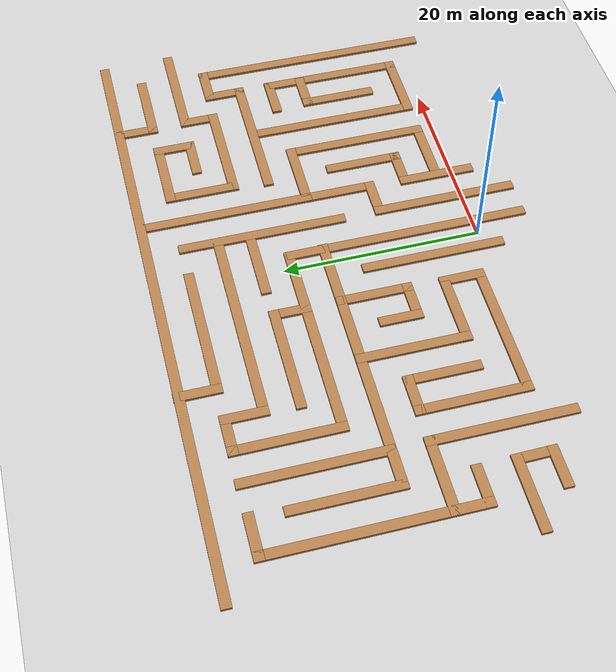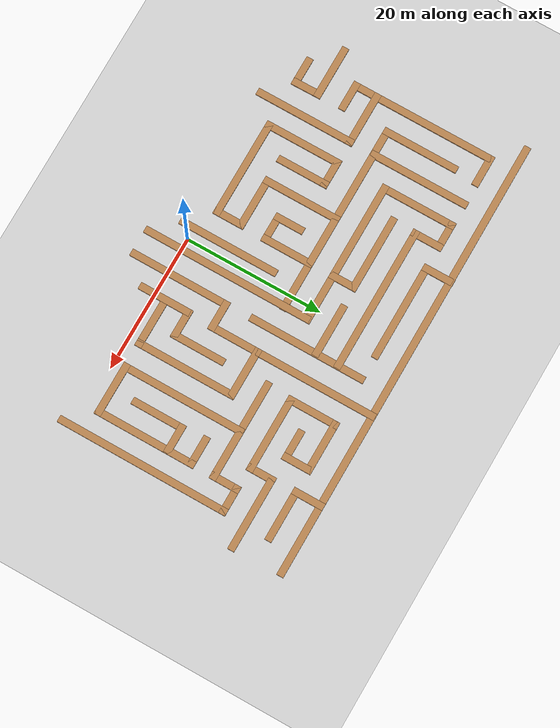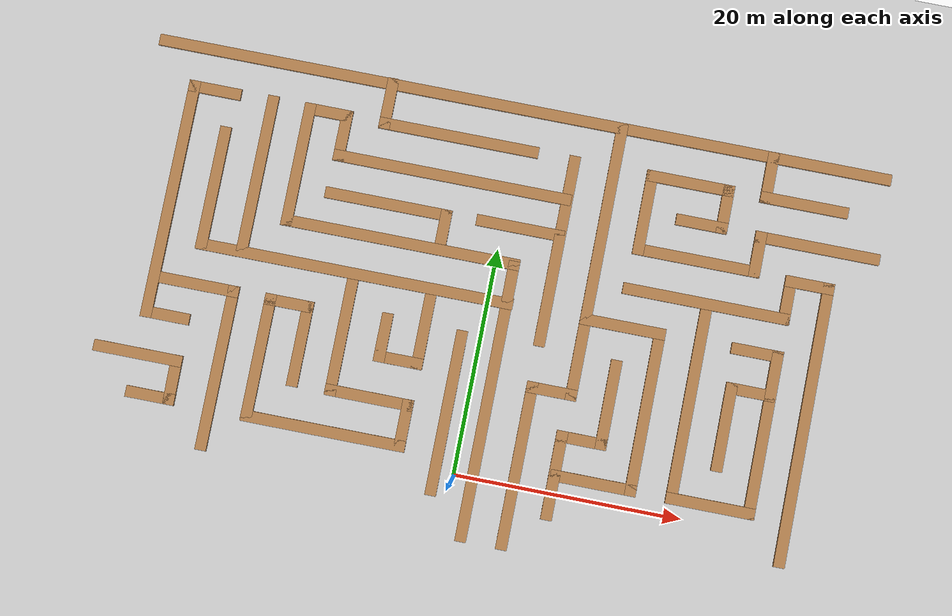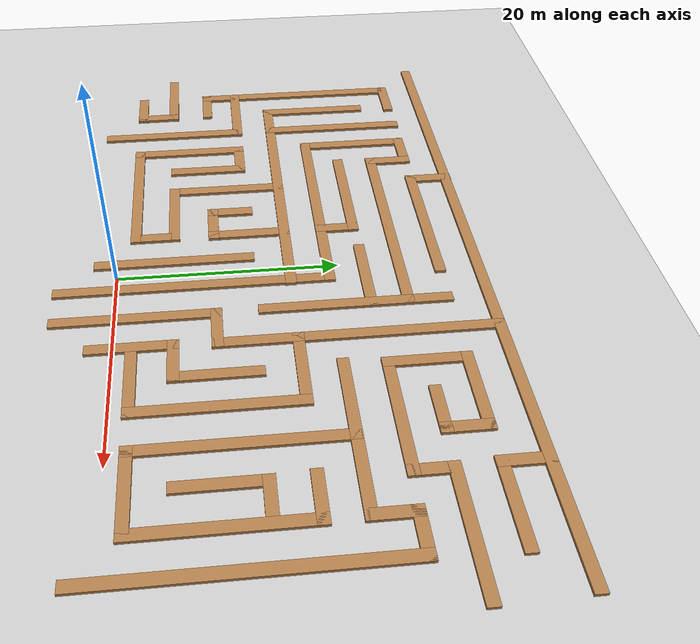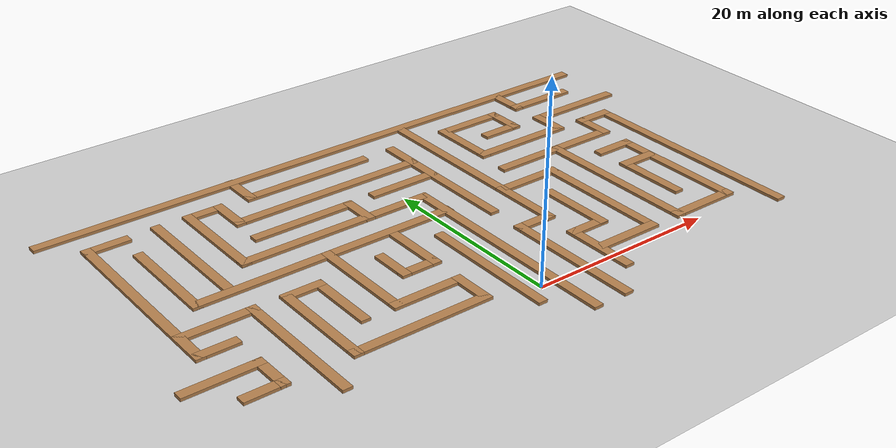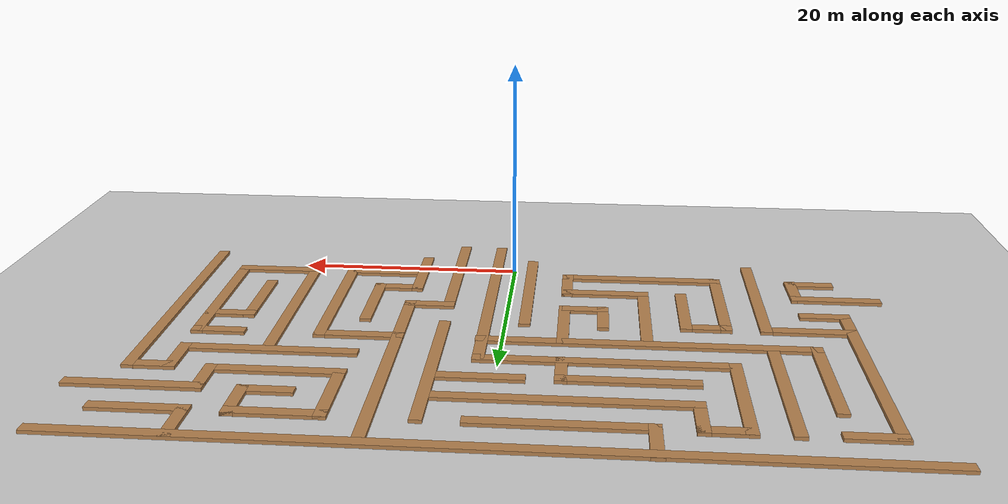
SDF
<sdf version="1.7">
 <world name="default">
  <model name="ground_plane">
   <static>1</static>
   <link name="link">
    <collision name="collision">
     <geometry><plane><normal>0 0 1</normal><size>100 100</size></plane></geometry>
     <surface><friction><ode><mu>100</mu><mu2>50</mu2></ode></friction></surface>
    </collision>
    <visual name="visual">
     <cast_shadows>0</cast_shadows>
     <geometry><plane><normal>0 0 1</normal><size>100 100</size></plane></geometry>
     <material>
      <script><uri>file://media/materials/scripts/gazebo.material</uri><name>Gazebo/Grey</name></script>
     </material>
    </visual>
   </link>
  </model>
  <model name="Maze_thick_walls">
   <pose>0.046124 0.012169 0 0 -0 0</pose>
   <link name="Wall_0">
    <collision name="Wall_0_Collision">
     <geometry><box><size>65.8498 1 0.3</size></box></geometry>
     <pose>0 0 0.15 0 -0 0</pose>
    </collision>
    <visual name="Wall_0_Visual">
     <pose>0 0 0.15 0 -0 0</pose>
     <geometry><box><size>65.8498 1 0.3</size></box></geometry>
     <material>
      <script><uri>file://media/materials/scripts/gazebo.material</uri><name>Gazebo/Wood</name></script>
      <ambient>1 1 1 1</ambient>
     </material>
     <meta><layer>0</layer></meta>
    </visual>
    <pose>-0.164124 32.6558 0 0 -0 0</pose>
   </link>
   <link name="Wall_13">
    <collision name="Wall_13_Collision">
     <geometry><box><size>4.714 1 0.3</size></box></geometry>
     <pose>0 0 0.15 0 -0 0</pose>
    </collision>
    <visual name="Wall_13_Visual">
     <pose>0 0 0.15 0 -0 0</pose>
     <geometry><box><size>4.714 1 0.3</size></box></geometry>
     <material>
      <script><uri>file://media/materials/scripts/gazebo.material</uri><name>Gazebo/Wood</name></script>
      <ambient>1 1 1 1</ambient>
     </material>
     <meta><layer>0</layer></meta>
    </visual>
    <pose>-27.3391 29.1298 0 0 -0 3.14159</pose>
   </link>
   <link name="Wall_15">
    <collision name="Wall_15_Collision">
     <geometry><box><size>21.35 1 0.3</size></box></geometry>
     <pose>0 0 0.15 0 -0 0</pose>
    </collision>
    <visual name="Wall_15_Visual">
     <pose>0 0 0.15 0 -0 0</pose>
     <geometry><box><size>21.35 1 0.3</size></box></geometry>
     <material>
      <script><uri>file://media/materials/scripts/gazebo.material</uri><name>Gazebo/Wood</name></script>
      <ambient>1 1 1 1</ambient>
     </material>
     <meta><layer>0</layer></meta>
    </visual>
    <pose>-29.1961 18.9548 0 0 -0 -1.5708</pose>
   </link>
   <link name="Wall_151">
    <collision name="Wall_151_Collision">
     <geometry><box><size>14.6 1 0.3</size></box></geometry>
     <pose>0 0 0.15 0 -0 0</pose>
    </collision>
    <visual name="Wall_151_Visual">
     <pose>0 0 0.15 0 -0 0</pose>
     <geometry><box><size>14.6 1 0.3</size></box></geometry>
     <material>
      <script><uri>file://media/materials/scripts/gazebo.material</uri><name>Gazebo/Wood</name></script>
      <ambient>1 1 1 1</ambient>
     </material>
     <meta><layer>0</layer></meta>
    </visual>
    <pose>-1.73612 5.15183 0 0 -0 1.5708</pose>
   </link>
   <link name="Wall_159">
    <collision name="Wall_159_Collision">
     <geometry><box><size>25.1 1 0.3</size></box></geometry>
     <pose>0 0 0.15 0 -0 0</pose>
    </collision>
    <visual name="Wall_159_Visual">
     <pose>0 0 0.15 0 -0 0</pose>
     <geometry><box><size>25.1 1 0.3</size></box></geometry>
     <material>
      <script><uri>file://media/materials/scripts/gazebo.material</uri><name>Gazebo/Wood</name></script>
      <ambient>1 1 1 1</ambient>
     </material>
     <meta><layer>0</layer></meta>
    </visual>
    <pose>29.0099 10.1139 0 0 -0 1.5708</pose>
   </link>
   <link name="Wall_161">
    <collision name="Wall_161_Collision">
     <geometry><box><size>4.35 1 0.3</size></box></geometry>
     <pose>0 0 0.15 0 -0 0</pose>
    </collision>
    <visual name="Wall_161_Visual">
     <pose>0 0 0.15 0 -0 0</pose>
     <geometry><box><size>4.35 1 0.3</size></box></geometry>
     <material>
      <script><uri>file://media/materials/scripts/gazebo.material</uri><name>Gazebo/Wood</name></script>
      <ambient>1 1 1 1</ambient>
     </material>
     <meta><layer>0</layer></meta>
    </visual>
    <pose>27.3349 22.1638 0 0 -0 3.14159</pose>
   </link>
   <link name="Wall_163">
    <collision name="Wall_163_Collision">
     <geometry><box><size>4.35 1 0.3</size></box></geometry>
     <pose>0 0 0.15 0 -0 0</pose>
    </collision>
    <visual name="Wall_163_Visual">
     <pose>0 0 0.15 0 -0 0</pose>
     <geometry><box><size>4.35 1 0.3</size></box></geometry>
     <material>
      <script><uri>file://media/materials/scripts/gazebo.material</uri><name>Gazebo/Wood</name></script>
      <ambient>1 1 1 1</ambient>
     </material>
     <meta><layer>0</layer></meta>
    </visual>
    <pose>25.6599 20.4888 0 0 -0 -1.5708</pose>
   </link>
   <link name="Wall_165">
    <collision name="Wall_165_Collision">
     <geometry><box><size>14.85 1 0.3</size></box></geometry>
     <pose>0 0 0.15 0 -0 0</pose>
    </collision>
    <visual name="Wall_165_Visual">
     <pose>0 0 0.15 0 -0 0</pose>
     <geometry><box><size>14.85 1 0.3</size></box></geometry>
     <material>
      <script><uri>file://media/materials/scripts/gazebo.material</uri><name>Gazebo/Wood</name></script>
      <ambient>1 1 1 1</ambient>
     </material>
     <meta><layer>0</layer></meta>
    </visual>
    <pose>18.7349 18.8138 0 0 -0 3.14159</pose>
   </link>
   <link name="Wall_167">
    <collision name="Wall_167_Collision">
     <geometry><box><size>4.59954 1 0.3</size></box></geometry>
     <pose>0 0 0.15 0 -0 0</pose>
    </collision>
    <visual name="Wall_167_Visual">
     <pose>0 0 0.15 0 -0 0</pose>
     <geometry><box><size>4.59954 1 0.3</size></box></geometry>
     <material>
      <script><uri>file://media/materials/scripts/gazebo.material</uri><name>Gazebo/Wood</name></script>
      <ambient>1 1 1 1</ambient>
     </material>
     <meta><layer>0</layer></meta>
    </visual>
    <pose>23.8789 15.4688 0 0 -0 0</pose>
   </link>
   <link name="Wall_169">
    <collision name="Wall_169_Collision">
     <geometry><box><size>14.85 1 0.3</size></box></geometry>
     <pose>0 0 0.15 0 -0 0</pose>
    </collision>
    <visual name="Wall_169_Visual">
     <pose>0 0 0.15 0 -0 0</pose>
     <geometry><box><size>14.85 1 0.3</size></box></geometry>
     <material>
      <script><uri>file://media/materials/scripts/gazebo.material</uri><name>Gazebo/Wood</name></script>
      <ambient>1 1 1 1</ambient>
     </material>
     <meta><layer>0</layer></meta>
    </visual>
    <pose>25.6789 8.54383 0 0 -0 -1.5708</pose>
   </link>
   <link name="Wall_17">
    <collision name="Wall_17_Collision">
     <geometry><box><size>4.35 1 0.3</size></box></geometry>
     <pose>0 0 0.15 0 -0 0</pose>
    </collision>
    <visual name="Wall_17_Visual">
     <pose>0 0 0.15 0 -0 0</pose>
     <geometry><box><size>4.35 1 0.3</size></box></geometry>
     <material>
      <script><uri>file://media/materials/scripts/gazebo.material</uri><name>Gazebo/Wood</name></script>
      <ambient>1 1 1 1</ambient>
     </material>
     <meta><layer>0</layer></meta>
    </visual>
    <pose>-27.5211 8.77983 0 0 -0 0</pose>
   </link>
   <link name="Wall_171">
    <collision name="Wall_171_Collision">
     <geometry><box><size>4.35026 1 0.3</size></box></geometry>
     <pose>0 0 0.15 0 -0 0</pose>
    </collision>
    <visual name="Wall_171_Visual">
     <pose>0 0 0.15 0 -0 0</pose>
     <geometry><box><size>4.35026 1 0.3</size></box></geometry>
     <material>
      <script><uri>file://media/materials/scripts/gazebo.material</uri><name>Gazebo/Wood</name></script>
      <ambient>1 1 1 1</ambient>
     </material>
     <meta><layer>0</layer></meta>
    </visual>
    <pose>23.8999 11.9818 0 0 -0 3.14159</pose>
   </link>
   <link name="Wall_173">
    <collision name="Wall_173_Collision">
     <geometry><box><size>7.85 1 0.3</size></box></geometry>
     <pose>0 0 0.15 0 -0 0</pose>
    </collision>
    <visual name="Wall_173_Visual">
     <pose>0 0 0.15 0 -0 0</pose>
     <geometry><box><size>7.85 1 0.3</size></box></geometry>
     <material>
      <script><uri>file://media/materials/scripts/gazebo.material</uri><name>Gazebo/Wood</name></script>
      <ambient>1 1 1 1</ambient>
     </material>
     <meta><layer>0</layer></meta>
    </visual>
    <pose>22.2249 8.55683 0 0 -0 -1.5708</pose>
   </link>
   <link name="Wall_175">
    <collision name="Wall_175_Collision">
     <geometry><box><size>7.85 1 0.3</size></box></geometry>
     <pose>0 0 0.15 0 -0 0</pose>
    </collision>
    <visual name="Wall_175_Visual">
     <pose>0 0 0.15 0 -0 0</pose>
     <geometry><box><size>7.85 1 0.3</size></box></geometry>
     <material>
      <script><uri>file://media/materials/scripts/gazebo.material</uri><name>Gazebo/Wood</name></script>
      <ambient>1 1 1 1</ambient>
     </material>
     <meta><layer>0</layer></meta>
    </visual>
    <pose>22.2539 1.61883 0 0 -0 3.14159</pose>
   </link>
   <link name="Wall_177">
    <collision name="Wall_177_Collision">
     <geometry><box><size>18.1 1 0.3</size></box></geometry>
     <pose>0 0 0.15 0 -0 0</pose>
    </collision>
    <visual name="Wall_177_Visual">
     <pose>0 0 0.15 0 -0 0</pose>
     <geometry><box><size>18.1 1 0.3</size></box></geometry>
     <material>
      <script><uri>file://media/materials/scripts/gazebo.material</uri><name>Gazebo/Wood</name></script>
      <ambient>1 1 1 1</ambient>
     </material>
     <meta><layer>0</layer></meta>
    </visual>
    <pose>18.8289 10.1688 0 0 -0 1.5708</pose>
   </link>
   <link name="Wall_179">
    <collision name="Wall_179_Collision">
     <geometry><box><size>7.85039 1 0.3</size></box></geometry>
     <pose>0 0 0.15 0 -0 0</pose>
    </collision>
    <visual name="Wall_179_Visual">
     <pose>0 0 0.15 0 -0 0</pose>
     <geometry><box><size>7.85039 1 0.3</size></box></geometry>
     <material>
      <script><uri>file://media/materials/scripts/gazebo.material</uri><name>Gazebo/Wood</name></script>
      <ambient>1 1 1 1</ambient>
     </material>
     <meta><layer>0</layer></meta>
    </visual>
    <pose>8.50888 1.61983 0 0 -0 1.5708</pose>
   </link>
   <link name="Wall_181">
    <collision name="Wall_181_Collision">
     <geometry><box><size>7.59964 1 0.3</size></box></geometry>
     <pose>0 0 0.15 0 -0 0</pose>
    </collision>
    <visual name="Wall_181_Visual">
     <pose>0 0 0.15 0 -0 0</pose>
     <geometry><box><size>7.59964 1 0.3</size></box></geometry>
     <material>
      <script><uri>file://media/materials/scripts/gazebo.material</uri><name>Gazebo/Wood</name></script>
      <ambient>1 1 1 1</ambient>
     </material>
     <meta><layer>0</layer></meta>
    </visual>
    <pose>11.9409 1.61383 0 0 -0 0</pose>
   </link>
   <link name="Wall_183">
    <collision name="Wall_183_Collision">
     <geometry><box><size>14.85 1 0.3</size></box></geometry>
     <pose>0 0 0.15 0 -0 0</pose>
    </collision>
    <visual name="Wall_183_Visual">
     <pose>0 0 0.15 0 -0 0</pose>
     <geometry><box><size>14.85 1 0.3</size></box></geometry>
     <material>
      <script><uri>file://media/materials/scripts/gazebo.material</uri><name>Gazebo/Wood</name></script>
      <ambient>1 1 1 1</ambient>
     </material>
     <meta><layer>0</layer></meta>
    </visual>
    <pose>15.2409 8.53883 0 0 -0 1.5708</pose>
   </link>
   <link name="Wall_185">
    <collision name="Wall_185_Collision">
     <geometry><box><size>7.6 1 0.3</size></box></geometry>
     <pose>0 0 0.15 0 -0 0</pose>
    </collision>
    <visual name="Wall_185_Visual">
     <pose>0 0 0.15 0 -0 0</pose>
     <geometry><box><size>7.6 1 0.3</size></box></geometry>
     <material>
      <script><uri>file://media/materials/scripts/gazebo.material</uri><name>Gazebo/Wood</name></script>
      <ambient>1 1 1 1</ambient>
     </material>
     <meta><layer>0</layer></meta>
    </visual>
    <pose>11.9409 15.4638 0 0 -0 3.14159</pose>
   </link>
   <link name="Wall_187">
    <collision name="Wall_187_Collision">
     <geometry><box><size>7.724 1 0.3</size></box></geometry>
     <pose>0 0 0.15 0 -0 0</pose>
    </collision>
    <visual name="Wall_187_Visual">
     <pose>0 0 0.15 0 -0 0</pose>
     <geometry><box><size>7.724 1 0.3</size></box></geometry>
     <material>
      <script><uri>file://media/materials/scripts/gazebo.material</uri><name>Gazebo/Wood</name></script>
      <ambient>1 1 1 1</ambient>
     </material>
     <meta><layer>0</layer></meta>
    </visual>
    <pose>8.64088 12.1018 0 0 -0 -1.5708</pose>
   </link>
   <link name="Wall_189">
    <collision name="Wall_189_Collision">
     <geometry><box><size>7.944 1 0.3</size></box></geometry>
     <pose>0 0 0.15 0 -0 0</pose>
    </collision>
    <visual name="Wall_189_Visual">
     <pose>0 0 0.15 0 -0 0</pose>
     <geometry><box><size>7.944 1 0.3</size></box></geometry>
     <material>
      <script><uri>file://media/materials/scripts/gazebo.material</uri><name>Gazebo/Wood</name></script>
      <ambient>1 1 1 1</ambient>
     </material>
     <meta><layer>0</layer></meta>
    </visual>
    <pose>11.9899 8.51683 0 0 -0 -1.5708</pose>
   </link>
   <link name="Wall_19">
    <collision name="Wall_19_Collision">
     <geometry><box><size>7.89642 1 0.3</size></box></geometry>
     <pose>0 0 0.15 0 -0 0</pose>
    </collision>
    <visual name="Wall_19_Visual">
     <pose>0 0 0.15 0 -0 0</pose>
     <geometry><box><size>7.89642 1 0.3</size></box></geometry>
     <material>
      <script><uri>file://media/materials/scripts/gazebo.material</uri><name>Gazebo/Wood</name></script>
      <ambient>1 1 1 1</ambient>
     </material>
     <meta><layer>0</layer></meta>
    </visual>
    <pose>-29.1691 5.05883 0 0 -0 0</pose>
   </link>
   <link name="Wall_191">
    <collision name="Wall_191_Collision">
     <geometry><box><size>4.481 1 0.3</size></box></geometry>
     <pose>0 0 0.15 0 -0 0</pose>
    </collision>
    <visual name="Wall_191_Visual">
     <pose>0 0 0.15 0 -0 0</pose>
     <geometry><box><size>4.481 1 0.3</size></box></geometry>
     <material>
      <script><uri>file://media/materials/scripts/gazebo.material</uri><name>Gazebo/Wood</name></script>
      <ambient>1 1 1 1</ambient>
     </material>
     <meta><layer>0</layer></meta>
    </visual>
    <pose>10.2494 5.04483 0 0 -0 3.14159</pose>
   </link>
   <link name="Wall_193">
    <collision name="Wall_193_Collision">
     <geometry><box><size>24.85 1 0.3</size></box></geometry>
     <pose>0 0 0.15 0 -0 0</pose>
    </collision>
    <visual name="Wall_193_Visual">
     <pose>0 0 0.15 0 -0 0</pose>
     <geometry><box><size>24.85 1 0.3</size></box></geometry>
     <material>
      <script><uri>file://media/materials/scripts/gazebo.material</uri><name>Gazebo/Wood</name></script>
      <ambient>1 1 1 1</ambient>
     </material>
     <meta><layer>0</layer></meta>
    </visual>
    <pose>1.57988 6.87483 0 0 -0 1.5708</pose>
   </link>
   <link name="Wall_195">
    <collision name="Wall_195_Collision">
     <geometry><box><size>14.79 1 0.3</size></box></geometry>
     <pose>0 0 0.15 0 -0 0</pose>
    </collision>
    <visual name="Wall_195_Visual">
     <pose>0 0 0.15 0 -0 0</pose>
     <geometry><box><size>14.79 1 0.3</size></box></geometry>
     <material>
      <script><uri>file://media/materials/scripts/gazebo.material</uri><name>Gazebo/Wood</name></script>
      <ambient>1 1 1 1</ambient>
     </material>
     <meta><layer>0</layer></meta>
    </visual>
    <pose>5.16588 1.84483 0 0 -0 1.5708</pose>
   </link>
   <link name="Wall_197">
    <collision name="Wall_197_Collision">
     <geometry><box><size>4.47552 1 0.3</size></box></geometry>
     <pose>0 0 0.15 0 -0 0</pose>
    </collision>
    <visual name="Wall_197_Visual">
     <pose>0 0 0.15 0 -0 0</pose>
     <geometry><box><size>4.47552 1 0.3</size></box></geometry>
     <material>
      <script><uri>file://media/materials/scripts/gazebo.material</uri><name>Gazebo/Wood</name></script>
      <ambient>1 1 1 1</ambient>
     </material>
     <meta><layer>0</layer></meta>
    </visual>
    <pose>6.90338 8.73983 0 0 -0 0</pose>
   </link>
   <link name="Wall_199">
    <collision name="Wall_199_Collision">
     <geometry><box><size>17.0997 1 0.3</size></box></geometry>
     <pose>0 0 0.15 0 -0 0</pose>
    </collision>
    <visual name="Wall_199_Visual">
     <pose>0 0 0.15 0 -0 0</pose>
     <geometry><box><size>17.0997 1 0.3</size></box></geometry>
     <material>
      <script><uri>file://media/materials/scripts/gazebo.material</uri><name>Gazebo/Wood</name></script>
      <ambient>1 1 1 1</ambient>
     </material>
     <meta><layer>0</layer></meta>
    </visual>
    <pose>5.05888 20.9058 0 0 -0 1.5708</pose>
   </link>
   <link name="Wall_201">
    <collision name="Wall_201_Collision">
     <geometry><box><size>7.84994 1 0.3</size></box></geometry>
     <pose>0 0 0.15 0 -0 0</pose>
    </collision>
    <visual name="Wall_201_Visual">
     <pose>0 0 0.15 0 -0 0</pose>
     <geometry><box><size>7.84994 1 0.3</size></box></geometry>
     <material>
      <script><uri>file://media/materials/scripts/gazebo.material</uri><name>Gazebo/Wood</name></script>
      <ambient>1 1 1 1</ambient>
     </material>
     <meta><layer>0</layer></meta>
    </visual>
    <pose>1.49488 22.2468 0 0 -0 3.14159</pose>
   </link>
   <link name="Wall_203">
    <collision name="Wall_203_Collision">
     <geometry><box><size>18.1 1 0.3</size></box></geometry>
     <pose>0 0 0.15 0 -0 0</pose>
    </collision>
    <visual name="Wall_203_Visual">
     <pose>0 0 0.15 0 -0 0</pose>
     <geometry><box><size>18.1 1 0.3</size></box></geometry>
     <material>
      <script><uri>file://media/materials/scripts/gazebo.material</uri><name>Gazebo/Wood</name></script>
      <ambient>1 1 1 1</ambient>
     </material>
     <meta><layer>0</layer></meta>
    </visual>
    <pose>8.64088 24.0138 0 0 -0 1.5708</pose>
   </link>
   <link name="Wall_207">
    <collision name="Wall_207_Collision">
     <geometry><box><size>4.60043 1 0.3</size></box></geometry>
     <pose>0 0 0.15 0 -0 0</pose>
    </collision>
    <visual name="Wall_207_Visual">
     <pose>0 0 0.15 0 -0 0</pose>
     <geometry><box><size>4.60043 1 0.3</size></box></geometry>
     <material>
      <script><uri>file://media/materials/scripts/gazebo.material</uri><name>Gazebo/Wood</name></script>
      <ambient>1 1 1 1</ambient>
     </material>
     <meta><layer>0</layer></meta>
    </visual>
    <pose>22.2059 30.8448 0 0 -0 -1.5708</pose>
   </link>
   <link name="Wall_209">
    <collision name="Wall_209_Collision">
     <geometry><box><size>7.85 1 0.3</size></box></geometry>
     <pose>0 0 0.15 0 -0 0</pose>
    </collision>
    <visual name="Wall_209_Visual">
     <pose>0 0 0.15 0 -0 0</pose>
     <geometry><box><size>7.85 1 0.3</size></box></geometry>
     <material>
      <script><uri>file://media/materials/scripts/gazebo.material</uri><name>Gazebo/Wood</name></script>
      <ambient>1 1 1 1</ambient>
     </material>
     <meta><layer>0</layer></meta>
    </visual>
    <pose>25.6309 29.0448 0 0 -0 0</pose>
   </link>
   <link name="Wall_21">
    <collision name="Wall_21_Collision">
     <geometry><box><size>4.39658 1 0.3</size></box></geometry>
     <pose>0 0 0.15 0 -0 0</pose>
    </collision>
    <visual name="Wall_21_Visual">
     <pose>0 0 0.15 0 -0 0</pose>
     <geometry><box><size>4.39658 1 0.3</size></box></geometry>
     <material>
      <script><uri>file://media/materials/scripts/gazebo.material</uri><name>Gazebo/Wood</name></script>
      <ambient>1 1 1 1</ambient>
     </material>
     <meta><layer>0</layer></meta>
    </visual>
    <pose>-25.6976 3.36083 0 0 -0 -1.55696</pose>
   </link>
   <link name="Wall_211">
    <collision name="Wall_211_Collision">
     <geometry><box><size>11.1001 1 0.3</size></box></geometry>
     <pose>0 0 0.15 0 -0 0</pose>
    </collision>
    <visual name="Wall_211_Visual">
     <pose>0 0 0.15 0 -0 0</pose>
     <geometry><box><size>11.1001 1 0.3</size></box></geometry>
     <material>
      <script><uri>file://media/materials/scripts/gazebo.material</uri><name>Gazebo/Wood</name></script>
      <ambient>1 1 1 1</ambient>
     </material>
     <meta><layer>0</layer></meta>
    </visual>
    <pose>27.4259 25.5138 0 0 -0 3.14159</pose>
   </link>
   <link name="Wall_213">
    <collision name="Wall_213_Collision">
     <geometry><box><size>4.1 1 0.3</size></box></geometry>
     <pose>0 0 0.15 0 -0 0</pose>
    </collision>
    <visual name="Wall_213_Visual">
     <pose>0 0 0.15 0 -0 0</pose>
     <geometry><box><size>4.1 1 0.3</size></box></geometry>
     <material>
      <script><uri>file://media/materials/scripts/gazebo.material</uri><name>Gazebo/Wood</name></script>
      <ambient>1 1 1 1</ambient>
     </material>
     <meta><layer>0</layer></meta>
    </visual>
    <pose>22.3759 23.9638 0 0 -0 -1.5708</pose>
   </link>
   <link name="Wall_215">
    <collision name="Wall_215_Collision">
     <geometry><box><size>11.35 1 0.3</size></box></geometry>
     <pose>0 0 0.15 0 -0 0</pose>
    </collision>
    <visual name="Wall_215_Visual">
     <pose>0 0 0.15 0 -0 0</pose>
     <geometry><box><size>11.35 1 0.3</size></box></geometry>
     <material>
      <script><uri>file://media/materials/scripts/gazebo.material</uri><name>Gazebo/Wood</name></script>
      <ambient>1 1 1 1</ambient>
     </material>
     <meta><layer>0</layer></meta>
    </visual>
    <pose>17.2009 22.4138 0 0 -0 3.14159</pose>
   </link>
   <link name="Wall_217">
    <collision name="Wall_217_Collision">
     <geometry><box><size>7.6 1 0.3</size></box></geometry>
     <pose>0 0 0.15 0 -0 0</pose>
    </collision>
    <visual name="Wall_217_Visual">
     <pose>0 0 0.15 0 -0 0</pose>
     <geometry><box><size>7.6 1 0.3</size></box></geometry>
     <material>
      <script><uri>file://media/materials/scripts/gazebo.material</uri><name>Gazebo/Wood</name></script>
      <ambient>1 1 1 1</ambient>
     </material>
     <meta><layer>0</layer></meta>
    </visual>
    <pose>12.0259 25.7138 0 0 -0 1.5708</pose>
   </link>
   <link name="Wall_219">
    <collision name="Wall_219_Collision">
     <geometry><box><size>7.85 1 0.3</size></box></geometry>
     <pose>0 0 0.15 0 -0 0</pose>
    </collision>
    <visual name="Wall_219_Visual">
     <pose>0 0 0.15 0 -0 0</pose>
     <geometry><box><size>7.85 1 0.3</size></box></geometry>
     <material>
      <script><uri>file://media/materials/scripts/gazebo.material</uri><name>Gazebo/Wood</name></script>
      <ambient>1 1 1 1</ambient>
     </material>
     <meta><layer>0</layer></meta>
    </visual>
    <pose>15.4509 29.0138 0 0 -0 0</pose>
   </link>
   <link name="Wall_221">
    <collision name="Wall_221_Collision">
     <geometry><box><size>4.35 1 0.3</size></box></geometry>
     <pose>0 0 0.15 0 -0 0</pose>
    </collision>
    <visual name="Wall_221_Visual">
     <pose>0 0 0.15 0 -0 0</pose>
     <geometry><box><size>4.35 1 0.3</size></box></geometry>
     <material>
      <script><uri>file://media/materials/scripts/gazebo.material</uri><name>Gazebo/Wood</name></script>
      <ambient>1 1 1 1</ambient>
     </material>
     <meta><layer>0</layer></meta>
    </visual>
    <pose>18.8759 27.3388 0 0 -0 -1.5708</pose>
   </link>
   <link name="Wall_223">
    <collision name="Wall_223_Collision">
     <geometry><box><size>4.6 1 0.3</size></box></geometry>
     <pose>0 0 0.15 0 -0 0</pose>
    </collision>
    <visual name="Wall_223_Visual">
     <pose>0 0 0.15 0 -0 0</pose>
     <geometry><box><size>4.6 1 0.3</size></box></geometry>
     <material>
      <script><uri>file://media/materials/scripts/gazebo.material</uri><name>Gazebo/Wood</name></script>
      <ambient>1 1 1 1</ambient>
     </material>
     <meta><layer>0</layer></meta>
    </visual>
    <pose>17.0759 25.6638 0 0 -0 3.14159</pose>
   </link>
   <link name="Wall_225">
    <collision name="Wall_225_Collision">
     <geometry><box><size>4.59974 1 0.3</size></box></geometry>
     <pose>0 0 0.15 0 -0 0</pose>
    </collision>
    <visual name="Wall_225_Visual">
     <pose>0 0 0.15 0 -0 0</pose>
     <geometry><box><size>4.59974 1 0.3</size></box></geometry>
     <material>
      <script><uri>file://media/materials/scripts/gazebo.material</uri><name>Gazebo/Wood</name></script>
      <ambient>1 1 1 1</ambient>
     </material>
     <meta><layer>0</layer></meta>
    </visual>
    <pose>-12.0301 30.8948 0 0 -0 -1.5708</pose>
   </link>
   <link name="Wall_227">
    <collision name="Wall_227_Collision">
     <geometry><box><size>14.35 1 0.3</size></box></geometry>
     <pose>0 0 0.15 0 -0 0</pose>
    </collision>
    <visual name="Wall_227_Visual">
     <pose>0 0 0.15 0 -0 0</pose>
     <geometry><box><size>14.35 1 0.3</size></box></geometry>
     <material>
      <script><uri>file://media/materials/scripts/gazebo.material</uri><name>Gazebo/Wood</name></script>
      <ambient>1 1 1 1</ambient>
     </material>
     <meta><layer>0</layer></meta>
    </visual>
    <pose>-5.35512 29.0948 0 0 -0 0</pose>
   </link>
   <link name="Wall_229">
    <collision name="Wall_229_Collision">
     <geometry><box><size>21.3496 1 0.3</size></box></geometry>
     <pose>0 0 0.15 0 -0 0</pose>
    </collision>
    <visual name="Wall_229_Visual">
     <pose>0 0 0.15 0 -0 0</pose>
     <geometry><box><size>21.3496 1 0.3</size></box></geometry>
     <material>
      <script><uri>file://media/materials/scripts/gazebo.material</uri><name>Gazebo/Wood</name></script>
      <ambient>1 1 1 1</ambient>
     </material>
     <meta><layer>0</layer></meta>
    </visual>
    <pose>-5.25012 25.5068 0 0 -0 3.14159</pose>
   </link>
   <link name="Wall_23">
    <collision name="Wall_23_Collision">
     <geometry><box><size>4.35 1 0.3</size></box></geometry>
     <pose>0 0 0.15 0 -0 0</pose>
    </collision>
    <visual name="Wall_23_Visual">
     <pose>0 0 0.15 0 -0 0</pose>
     <geometry><box><size>4.35 1 0.3</size></box></geometry>
     <material>
      <script><uri>file://media/materials/scripts/gazebo.material</uri><name>Gazebo/Wood</name></script>
      <ambient>1 1 1 1</ambient>
     </material>
     <meta><layer>0</layer></meta>
    </visual>
    <pose>-27.3491 1.66283 0 0 -0 3.14159</pose>
   </link>
   <link name="Wall_231">
    <collision name="Wall_231_Collision">
     <geometry><box><size>4.6 1 0.3</size></box></geometry>
     <pose>0 0 0.15 0 -0 0</pose>
    </collision>
    <visual name="Wall_231_Visual">
     <pose>0 0 0.15 0 -0 0</pose>
     <geometry><box><size>4.6 1 0.3</size></box></geometry>
     <material>
      <script><uri>file://media/materials/scripts/gazebo.material</uri><name>Gazebo/Wood</name></script>
      <ambient>1 1 1 1</ambient>
     </material>
     <meta><layer>0</layer></meta>
    </visual>
    <pose>-15.4251 27.3068 0 0 -0 1.5708</pose>
   </link>
   <link name="Wall_233">
    <collision name="Wall_233_Collision">
     <geometry><box><size>4.35 1 0.3</size></box></geometry>
     <pose>0 0 0.15 0 -0 0</pose>
    </collision>
    <visual name="Wall_233_Visual">
     <pose>0 0 0.15 0 -0 0</pose>
     <geometry><box><size>4.35 1 0.3</size></box></geometry>
     <material>
      <script><uri>file://media/materials/scripts/gazebo.material</uri><name>Gazebo/Wood</name></script>
      <ambient>1 1 1 1</ambient>
     </material>
     <meta><layer>0</layer></meta>
    </visual>
    <pose>-17.1001 29.1068 0 0 -0 3.14159</pose>
   </link>
   <link name="Wall_235">
    <collision name="Wall_235_Collision">
     <geometry><box><size>11.1 1 0.3</size></box></geometry>
     <pose>0 0 0.15 0 -0 0</pose>
    </collision>
    <visual name="Wall_235_Visual">
     <pose>0 0 0.15 0 -0 0</pose>
     <geometry><box><size>11.1 1 0.3</size></box></geometry>
     <material>
      <script><uri>file://media/materials/scripts/gazebo.material</uri><name>Gazebo/Wood</name></script>
      <ambient>1 1 1 1</ambient>
     </material>
     <meta><layer>0</layer></meta>
    </visual>
    <pose>-18.7751 24.0568 0 0 -0 -1.5708</pose>
   </link>
   <link name="Wall_237">
    <collision name="Wall_237_Collision">
     <geometry><box><size>21.35 1 0.3</size></box></geometry>
     <pose>0 0 0.15 0 -0 0</pose>
    </collision>
    <visual name="Wall_237_Visual">
     <pose>0 0 0.15 0 -0 0</pose>
     <geometry><box><size>21.35 1 0.3</size></box></geometry>
     <material>
      <script><uri>file://media/materials/scripts/gazebo.material</uri><name>Gazebo/Wood</name></script>
      <ambient>1 1 1 1</ambient>
     </material>
     <meta><layer>0</layer></meta>
    </visual>
    <pose>-8.60012 19.0068 0 0 -0 0</pose>
   </link>
   <link name="Wall_239">
    <collision name="Wall_239_Collision">
     <geometry><box><size>4.10016 1 0.3</size></box></geometry>
     <pose>0 0 0.15 0 -0 0</pose>
    </collision>
    <visual name="Wall_239_Visual">
     <pose>0 0 0.15 0 -0 0</pose>
     <geometry><box><size>4.10016 1 0.3</size></box></geometry>
     <material>
      <script><uri>file://media/materials/scripts/gazebo.material</uri><name>Gazebo/Wood</name></script>
      <ambient>1 1 1 1</ambient>
     </material>
     <meta><layer>0</layer></meta>
    </visual>
    <pose>-5.11612 20.5538 0 0 -0 1.5708</pose>
   </link>
   <link name="Wall_241">
    <collision name="Wall_241_Collision">
     <geometry><box><size>11.35 1 0.3</size></box></geometry>
     <pose>0 0 0.15 0 -0 0</pose>
    </collision>
    <visual name="Wall_241_Visual">
     <pose>0 0 0.15 0 -0 0</pose>
     <geometry><box><size>11.35 1 0.3</size></box></geometry>
     <material>
      <script><uri>file://media/materials/scripts/gazebo.material</uri><name>Gazebo/Wood</name></script>
      <ambient>1 1 1 1</ambient>
     </material>
     <meta><layer>0</layer></meta>
    </visual>
    <pose>-10.2911 22.1038 0 0 -0 3.14159</pose>
   </link>
   <link name="Wall_244">
    <collision name="Wall_244_Collision">
     <geometry><box><size>11.1 1 0.3</size></box></geometry>
     <pose>0 0 0.15 0 -0 0</pose>
    </collision>
    <visual name="Wall_244_Visual">
     <pose>0 0 0.15 0 -0 0</pose>
     <geometry><box><size>11.1 1 0.3</size></box></geometry>
     <material>
      <script><uri>file://media/materials/scripts/gazebo.material</uri><name>Gazebo/Wood</name></script>
      <ambient>1 1 1 1</ambient>
     </material>
     <meta><layer>0</layer></meta>
    </visual>
    <pose>-25.6951 20.5608 0 0 -0 -1.5708</pose>
   </link>
   <link name="Wall_246">
    <collision name="Wall_246_Collision">
     <geometry><box><size>28.35 1 0.3</size></box></geometry>
     <pose>0 0 0.15 0 -0 0</pose>
    </collision>
    <visual name="Wall_246_Visual">
     <pose>0 0 0.15 0 -0 0</pose>
     <geometry><box><size>28.35 1 0.3</size></box></geometry>
     <material>
      <script><uri>file://media/materials/scripts/gazebo.material</uri><name>Gazebo/Wood</name></script>
      <ambient>1 1 1 1</ambient>
     </material>
     <meta><layer>0</layer></meta>
    </visual>
    <pose>-12.0201 15.5108 0 0 -0 0</pose>
   </link>
   <link name="Wall_248">
    <collision name="Wall_248_Collision">
     <geometry><box><size>14.536 1 0.3</size></box></geometry>
     <pose>0 0 0.15 0 -0 0</pose>
    </collision>
    <visual name="Wall_248_Visual">
     <pose>0 0 0.15 0 -0 0</pose>
     <geometry><box><size>14.536 1 0.3</size></box></geometry>
     <material>
      <script><uri>file://media/materials/scripts/gazebo.material</uri><name>Gazebo/Wood</name></script>
      <ambient>1 1 1 1</ambient>
     </material>
     <meta><layer>0</layer></meta>
    </visual>
    <pose>-22.1121 22.3618 0 0 -0 1.5708</pose>
   </link>
   <link name="Wall_25">
    <collision name="Wall_25_Collision">
     <geometry><box><size>8.10041 1 0.3</size></box></geometry>
     <pose>0 0 0.15 0 -0 0</pose>
    </collision>
    <visual name="Wall_25_Visual">
     <pose>0 0 0.15 0 -0 0</pose>
     <geometry><box><size>8.10041 1 0.3</size></box></geometry>
     <material>
      <script><uri>file://media/materials/scripts/gazebo.material</uri><name>Gazebo/Wood</name></script>
      <ambient>1 1 1 1</ambient>
     </material>
     <meta><layer>0</layer></meta>
    </visual>
    <pose>-25.6441 11.9518 0 0 -0 0</pose>
   </link>
   <link name="Wall_250">
    <collision name="Wall_250_Collision">
     <geometry><box><size>11.3497 1 0.3</size></box></geometry>
     <pose>0 0 0.15 0 -0 0</pose>
    </collision>
    <visual name="Wall_250_Visual">
     <pose>0 0 0.15 0 -0 0</pose>
     <geometry><box><size>11.3497 1 0.3</size></box></geometry>
     <material>
      <script><uri>file://media/materials/scripts/gazebo.material</uri><name>Gazebo/Wood</name></script>
      <ambient>1 1 1 1</ambient>
     </material>
     <meta><layer>0</layer></meta>
    </visual>
    <pose>-12.0251 10.3138 0 0 -0 -1.5708</pose>
   </link>
   <link name="Wall_252">
    <collision name="Wall_252_Collision">
     <geometry><box><size>7.85 1 0.3</size></box></geometry>
     <pose>0 0 0.15 0 -0 0</pose>
    </collision>
    <visual name="Wall_252_Visual">
     <pose>0 0 0.15 0 -0 0</pose>
     <geometry><box><size>7.85 1 0.3</size></box></geometry>
     <material>
      <script><uri>file://media/materials/scripts/gazebo.material</uri><name>Gazebo/Wood</name></script>
      <ambient>1 1 1 1</ambient>
     </material>
     <meta><layer>0</layer></meta>
    </visual>
    <pose>-8.60012 5.13883 0 0 -0 0</pose>
   </link>
   <link name="Wall_254">
    <collision name="Wall_254_Collision">
     <geometry><box><size>4.6 1 0.3</size></box></geometry>
     <pose>0 0 0.15 0 -0 0</pose>
    </collision>
    <visual name="Wall_254_Visual">
     <pose>0 0 0.15 0 -0 0</pose>
     <geometry><box><size>4.6 1 0.3</size></box></geometry>
     <material>
      <script><uri>file://media/materials/scripts/gazebo.material</uri><name>Gazebo/Wood</name></script>
      <ambient>1 1 1 1</ambient>
     </material>
     <meta><layer>0</layer></meta>
    </visual>
    <pose>-5.17512 3.33883 0 0 -0 -1.5708</pose>
   </link>
   <link name="Wall_256">
    <collision name="Wall_256_Collision">
     <geometry><box><size>14.6 1 0.3</size></box></geometry>
     <pose>0 0 0.15 0 -0 0</pose>
    </collision>
    <visual name="Wall_256_Visual">
     <pose>0 0 0.15 0 -0 0</pose>
     <geometry><box><size>14.6 1 0.3</size></box></geometry>
     <material>
      <script><uri>file://media/materials/scripts/gazebo.material</uri><name>Gazebo/Wood</name></script>
      <ambient>1 1 1 1</ambient>
     </material>
     <meta><layer>0</layer></meta>
    </visual>
    <pose>-11.9751 1.53883 0 0 -0 3.14159</pose>
   </link>
   <link name="Wall_258">
    <collision name="Wall_258_Collision">
     <geometry><box><size>11.35 1 0.3</size></box></geometry>
     <pose>0 0 0.15 0 -0 0</pose>
    </collision>
    <visual name="Wall_258_Visual">
     <pose>0 0 0.15 0 -0 0</pose>
     <geometry><box><size>11.35 1 0.3</size></box></geometry>
     <material>
      <script><uri>file://media/materials/scripts/gazebo.material</uri><name>Gazebo/Wood</name></script>
      <ambient>1 1 1 1</ambient>
     </material>
     <meta><layer>0</layer></meta>
    </visual>
    <pose>-18.7751 6.71383 0 0 -0 1.5708</pose>
   </link>
   <link name="Wall_260">
    <collision name="Wall_260_Collision">
     <geometry><box><size>4.35 1 0.3</size></box></geometry>
     <pose>0 0 0.15 0 -0 0</pose>
    </collision>
    <visual name="Wall_260_Visual">
     <pose>0 0 0.15 0 -0 0</pose>
     <geometry><box><size>4.35 1 0.3</size></box></geometry>
     <material>
      <script><uri>file://media/materials/scripts/gazebo.material</uri><name>Gazebo/Wood</name></script>
      <ambient>1 1 1 1</ambient>
     </material>
     <meta><layer>0</layer></meta>
    </visual>
    <pose>-17.1001 11.8888 0 0 -0 0</pose>
   </link>
   <link name="Wall_262">
    <collision name="Wall_262_Collision">
     <geometry><box><size>7.6 1 0.3</size></box></geometry>
     <pose>0 0 0.15 0 -0 0</pose>
    </collision>
    <visual name="Wall_262_Visual">
     <pose>0 0 0.15 0 -0 0</pose>
     <geometry><box><size>7.6 1 0.3</size></box></geometry>
     <material>
      <script><uri>file://media/materials/scripts/gazebo.material</uri><name>Gazebo/Wood</name></script>
      <ambient>1 1 1 1</ambient>
     </material>
     <meta><layer>0</layer></meta>
    </visual>
    <pose>-15.4251 8.58883 0 0 -0 -1.5708</pose>
   </link>
   <link name="Wall_264">
    <collision name="Wall_264_Collision">
     <geometry><box><size>7.638 1 0.3</size></box></geometry>
     <pose>0 0 0.15 0 -0 0</pose>
    </collision>
    <visual name="Wall_264_Visual">
     <pose>0 0 0.15 0 -0 0</pose>
     <geometry><box><size>7.638 1 0.3</size></box></geometry>
     <material>
      <script><uri>file://media/materials/scripts/gazebo.material</uri><name>Gazebo/Wood</name></script>
      <ambient>1 1 1 1</ambient>
     </material>
     <meta><layer>0</layer></meta>
    </visual>
    <pose>-5.06912 12.1578 0 0 -0 -1.5708</pose>
   </link>
   <link name="Wall_267">
    <collision name="Wall_267_Collision">
     <geometry><box><size>4.35 1 0.3</size></box></geometry>
     <pose>0 0 0.15 0 -0 0</pose>
    </collision>
    <visual name="Wall_267_Visual">
     <pose>0 0 0.15 0 -0 0</pose>
     <geometry><box><size>4.35 1 0.3</size></box></geometry>
     <material>
      <script><uri>file://media/materials/scripts/gazebo.material</uri><name>Gazebo/Wood</name></script>
      <ambient>1 1 1 1</ambient>
     </material>
     <meta><layer>0</layer></meta>
    </visual>
    <pose>-6.74412 8.83883 0 0 -0 3.14159</pose>
   </link>
   <link name="Wall_269">
    <collision name="Wall_269_Collision">
     <geometry><box><size>4.35 1 0.3</size></box></geometry>
     <pose>0 0 0.15 0 -0 0</pose>
    </collision>
    <visual name="Wall_269_Visual">
     <pose>0 0 0.15 0 -0 0</pose>
     <geometry><box><size>4.35 1 0.3</size></box></geometry>
     <material>
      <script><uri>file://media/materials/scripts/gazebo.material</uri><name>Gazebo/Wood</name></script>
      <ambient>1 1 1 1</ambient>
     </material>
     <meta><layer>0</layer></meta>
    </visual>
    <pose>-8.41912 10.5138 0 0 -0 1.5708</pose>
   </link>
   <link name="Wall_27">
    <collision name="Wall_27_Collision">
     <geometry><box><size>14.6001 1 0.3</size></box></geometry>
     <pose>0 0 0.15 0 -0 0</pose>
    </collision>
    <visual name="Wall_27_Visual">
     <pose>0 0 0.15 0 -0 0</pose>
     <geometry><box><size>14.6001 1 0.3</size></box></geometry>
     <material>
      <script><uri>file://media/materials/scripts/gazebo.material</uri><name>Gazebo/Wood</name></script>
      <ambient>1 1 1 1</ambient>
     </material>
     <meta><layer>0</layer></meta>
    </visual>
    <pose>-22.0941 5.15183 0 0 -0 -1.5708</pose>
   </link>
   <static>1</static>
  </model>
 </world>
</sdf>
